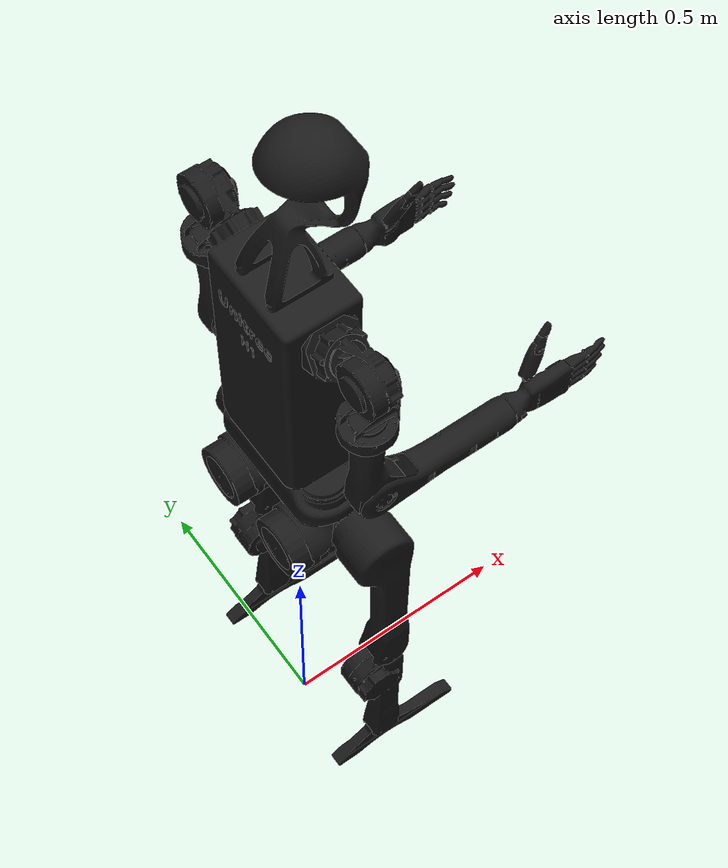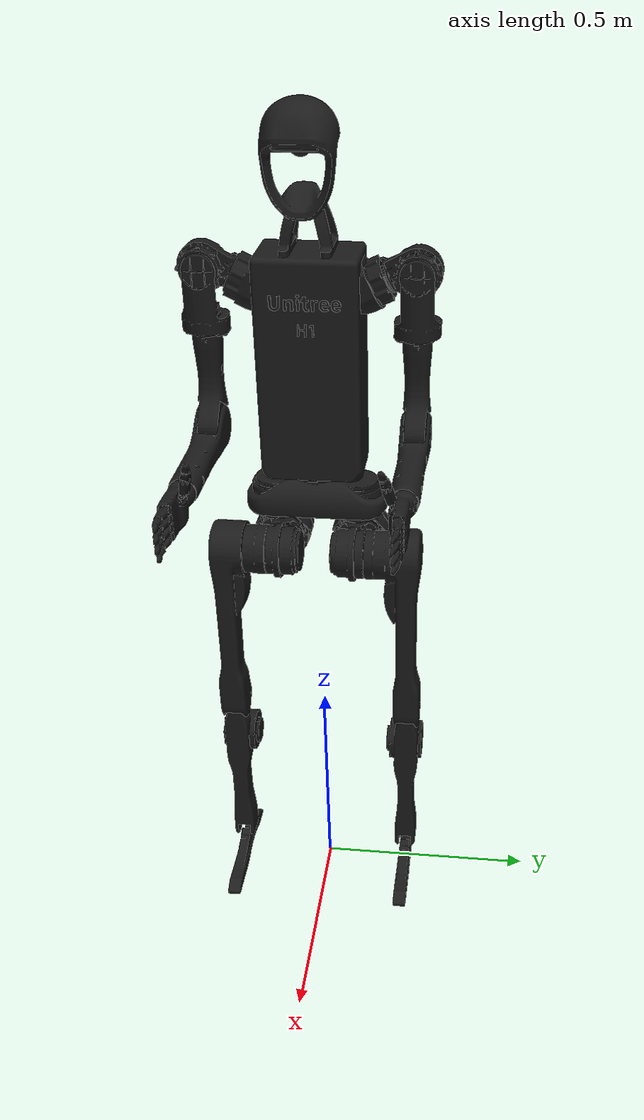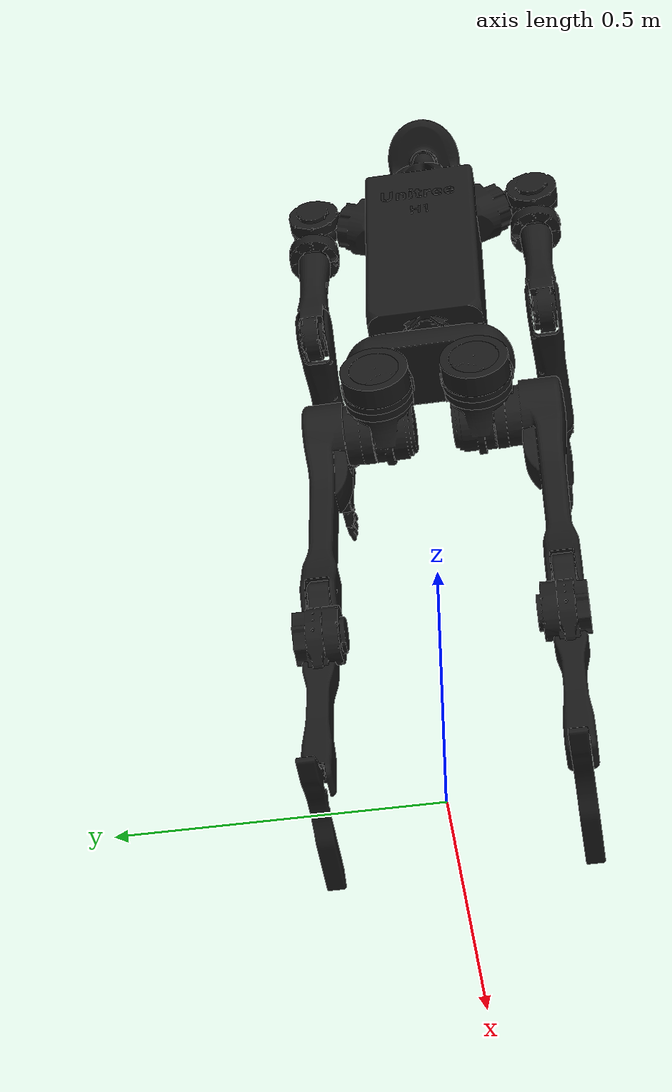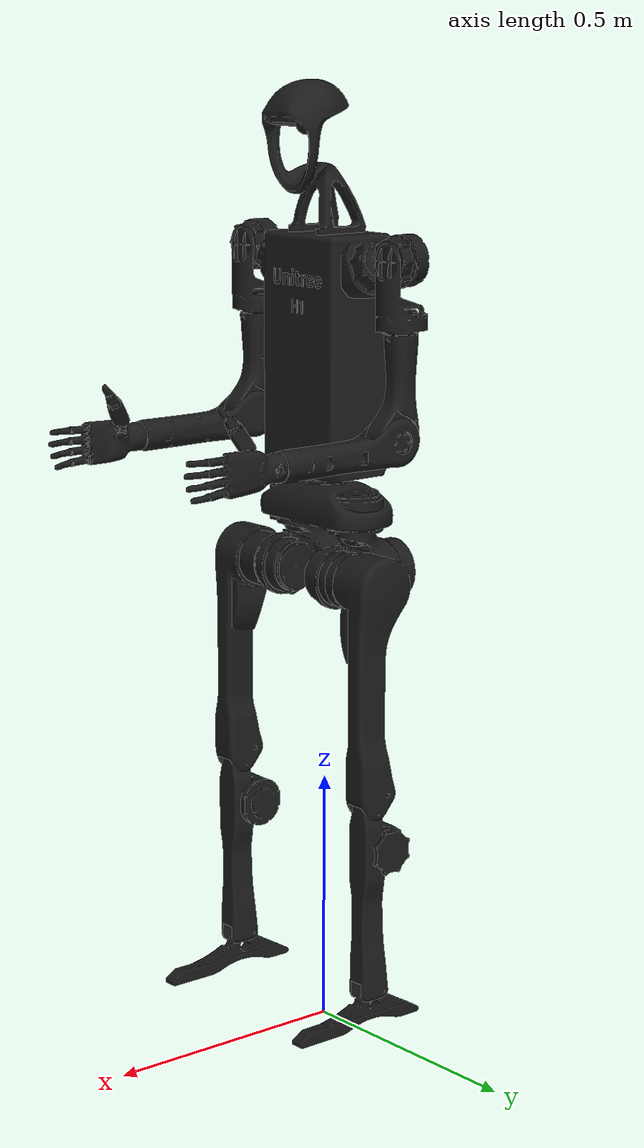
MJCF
<mujoco model="h1">
  <compiler angle="radian" meshdir="../meshes" autolimits="true"/>

  <default>
    <default class="h1">
      <geom type="mesh"/>
      <joint damping="1" armature="0.1"/>
      <default class="visual">
        <geom contype="0" conaffinity="0" group="2" material="black"/>
      </default>
      <default class="collision">
        <geom group="3" mass="0" density="0"/>
      </default>
      <site size="0.001" rgba="0.5 0.5 0.5 0.3" group="4"/>
    </default>
  </default>

  <asset>
    <material name="black" rgba="0.1 0.1 0.1 1"/>
    <material name="white" rgba="0.1 0.1 0.1 1"/>

    <mesh name="pelvis" file="pelvis.STL"/>
    <mesh name="left_hip_yaw_link" file="left_hip_yaw_link.STL"/>
    <mesh name="left_hip_roll_link" file="left_hip_roll_link.STL"/>
    <mesh name="left_hip_pitch_link" file="left_hip_pitch_link.STL"/>
    <mesh name="left_knee_link" file="left_knee_link.STL"/>
    <mesh name="left_ankle_link" file="left_ankle_link.STL"/>
    <mesh name="right_hip_yaw_link" file="right_hip_yaw_link.STL"/>
    <mesh name="right_hip_roll_link" file="right_hip_roll_link.STL"/>
    <mesh name="right_hip_pitch_link" file="right_hip_pitch_link.STL"/>
    <mesh name="right_knee_link" file="right_knee_link.STL"/>
    <mesh name="right_ankle_link" file="right_ankle_link.STL"/>
    <mesh name="torso_link" file="torso_link.STL"/>
    <mesh name="left_shoulder_pitch_link" file="left_shoulder_pitch_link.STL"/>
    <mesh name="left_shoulder_roll_link" file="left_shoulder_roll_link.STL"/>
    <mesh name="left_shoulder_yaw_link" file="left_shoulder_yaw_link.STL"/>
    <mesh name="left_elbow_link" file="left_elbow_link.STL"/>
    <mesh name="left_hand_link" file="left_hand_link.STL"/>
    <mesh name="L_hand_base_link" file="L_hand_base_link.STL"/>
    <mesh name="Link11_L" file="Link11_L.STL"/>
    <mesh name="Link12_L" file="Link12_L.STL"/>
    <mesh name="Link13_L" file="Link13_L.STL"/>
    <mesh name="Link14_L" file="Link14_L.STL"/>
    <mesh name="Link15_L" file="Link15_L.STL"/>
    <mesh name="Link16_L" file="Link16_L.STL"/>
    <mesh name="Link17_L" file="Link17_L.STL"/>
    <mesh name="Link18_L" file="Link18_L.STL"/>
    <mesh name="Link19_L" file="Link19_L.STL"/>
    <mesh name="Link20_L" file="Link20_L.STL"/>
    <mesh name="Link21_L" file="Link21_L.STL"/>
    <mesh name="Link22_L" file="Link22_L.STL"/>
    <mesh name="right_shoulder_pitch_link" file="right_shoulder_pitch_link.STL"/>
    <mesh name="right_shoulder_roll_link" file="right_shoulder_roll_link.STL"/>
    <mesh name="right_shoulder_yaw_link" file="right_shoulder_yaw_link.STL"/>
    <mesh name="right_elbow_link" file="right_elbow_link.STL"/>
    <mesh name="right_hand_link" file="right_hand_link.STL"/>
    <mesh name="R_hand_base_link" file="R_hand_base_link.STL"/>
    <mesh name="Link11_R" file="Link11_R.STL"/>
    <mesh name="Link12_R" file="Link12_R.STL"/>
    <mesh name="Link13_R" file="Link13_R.STL"/>
    <mesh name="Link14_R" file="Link14_R.STL"/>
    <mesh name="Link15_R" file="Link15_R.STL"/>
    <mesh name="Link16_R" file="Link16_R.STL"/>
    <mesh name="Link17_R" file="Link17_R.STL"/>
    <mesh name="Link18_R" file="Link18_R.STL"/>
    <mesh name="Link19_R" file="Link19_R.STL"/>
    <mesh name="Link20_R" file="Link20_R.STL"/>
    <mesh name="Link21_R" file="Link21_R.STL"/>
    <mesh name="Link22_R" file="Link22_R.STL"/>
    <mesh name="logo_link" file="logo_link.STL"/>
  </asset>
  <worldbody>
    <body name="pelvis" pos="0 0 1.1" childclass="h1">
      <inertial pos="-0.0002 4e-05 -0.04522" quat="0.498303 0.499454 -0.500496 0.501741" mass="5.39" diaginertia="0.0490211 0.0445821 0.00824619"/>
      <freejoint/>
      <geom class="visual" mesh="pelvis"/>
      <geom class="collision" mesh="pelvis"/>
      <body name="left_hip_yaw_link" pos="0 0.0875 -0.1742">
        <inertial pos="-0.04923 0.0001 0.0072" quat="0.69699 0.219193 0.233287 0.641667" mass="2.244" diaginertia="0.00304494 0.00296885 0.00189201"/>
        <joint name="left_hip_yaw_joint" pos="0 0 0" axis="0 0 1" range="-0.43 0.43"/>
        <geom class="visual" mesh="left_hip_yaw_link"/>
        <geom size="0.06 0.035" pos="-0.067 0 0" quat="0.707123 0 0.70709 0" type="cylinder"
          rgba="0.1 0.1 0.1 1" />
        <body name="left_hip_roll_link" pos="0.039468 0 0">
          <inertial pos="-0.0058 -0.00319 -9e-05" quat="0.0438242 0.70721 -0.0729075 0.701867" mass="2.232" diaginertia="0.00243264 0.00225325 0.00205492"/>
          <joint name="left_hip_roll_joint" pos="0 0 0" axis="1 0 0" range="-0.43 0.43"/>
          <geom class="visual" mesh="left_hip_roll_link"/>
          <geom class="collision" mesh="left_hip_roll_link"/>
          <body name="left_hip_pitch_link" pos="0 0.11536 0">
            <inertial pos="0.00746 -0.02346 -0.08193" quat="0.979828 0.0513522 -0.0169854 -0.192382" mass="4.152" diaginertia="0.0829503 0.0821457 0.00510909"/>
            <joint name="left_hip_pitch_joint" pos="0 0 0" axis="0 1 0" range="-3.14 2.53"/>
            <geom class="visual" mesh="left_hip_pitch_link"/>
            <geom class="collision" mesh="left_hip_pitch_link"/>
            <body name="left_knee_link" pos="0 0 -0.4">
              <inertial pos="-0.00136 -0.00512 -0.1384" quat="0.626132 -0.034227 -0.0416277 0.777852" mass="1.721" diaginertia="0.0125237 0.0123104 0.0019428"/>
              <joint name="left_knee_joint" pos="0 0 0" axis="0 1 0" range="-0.26 2.05"/>
              <geom class="visual" mesh="left_knee_link"/>
              <geom class="collision" mesh="left_knee_link"/>
              <body name="left_ankle_link" pos="0 0 -0.4">
                <inertial pos="0.042575 -1e-06 -0.044672" quat="0.486508 0.513141 0.513061 0.486585" mass="0.474" diaginertia="0.00290029 0.00281294 0.000152168"/>
                <joint name="left_ankle_joint" pos="0 0 0" axis="0 1 0" range="-0.87 0.52"/>
                <geom class="visual" mesh="left_ankle_link"/>
                <geom class="collision" mesh="left_ankle_link"/>
              </body>
            </body>
          </body>
        </body>
      </body>
      <body name="right_hip_yaw_link" pos="0 -0.0875 -0.1742">
        <inertial pos="-0.04923 -0.0001 0.0072" quat="0.641667 0.233287 0.219193 0.69699" mass="2.244" diaginertia="0.00304494 0.00296885 0.00189201"/>
        <joint name="right_hip_yaw_joint" pos="0 0 0" axis="0 0 1" range="-0.43 0.43"/>
        <geom class="visual" mesh="right_hip_yaw_link"/>
        <geom size="0.06 0.035" pos="-0.067 0 0" quat="0.707123 0 0.70709 0" type="cylinder"
          rgba="0.1 0.1 0.1 1" />
        <body name="right_hip_roll_link" pos="0.039468 0 0">
          <inertial pos="-0.0058 0.00319 -9e-05" quat="-0.0438242 0.70721 0.0729075 0.701867" mass="2.232" diaginertia="0.00243264 0.00225325 0.00205492"/>
          <joint name="right_hip_roll_joint" pos="0 0 0" axis="1 0 0" range="-0.43 0.43"/>
          <geom class="visual" mesh="right_hip_roll_link"/>
          <geom class="collision" mesh="right_hip_roll_link"/>
          <body name="right_hip_pitch_link" pos="0 -0.11536 0">
            <inertial pos="0.00746 0.02346 -0.08193" quat="0.979828 -0.0513522 -0.0169854 0.192382" mass="4.152" diaginertia="0.0829503 0.0821457 0.00510909"/>
            <joint name="right_hip_pitch_joint" pos="0 0 0" axis="0 1 0" range="-3.14 2.53"/>
            <geom class="visual" mesh="right_hip_pitch_link"/>
            <geom class="collision" mesh="right_hip_pitch_link"/>
            <body name="right_knee_link" pos="0 0 -0.4">
              <inertial pos="-0.00136 0.00512 -0.1384" quat="0.777852 -0.0416277 -0.034227 0.626132" mass="1.721" diaginertia="0.0125237 0.0123104 0.0019428"/>
              <joint name="right_knee_joint" pos="0 0 0" axis="0 1 0" range="-0.26 2.05"/>
              <geom class="visual" mesh="right_knee_link"/>
              <geom class="collision" mesh="right_knee_link"/>
              <body name="right_ankle_link" pos="0 0 -0.4">
                <inertial pos="0.042575 1e-06 -0.044672" quat="0.486585 0.513061 0.513141 0.486508" mass="0.474" diaginertia="0.00290029 0.00281294 0.000152168"/>
                <joint name="right_ankle_joint" pos="0 0 0" axis="0 1 0" range="-0.87 0.52"/>
                <geom class="visual" mesh="right_ankle_link"/>
                <geom class="collision" mesh="right_ankle_link"/>
              </body>
            </body>
          </body>
        </body>
      </body>
      <body name="torso_link">
        <inertial pos="0.000481917 0.00277509 0.207345" quat="0.99999 -0.00115864 -0.00279611 -0.00322135" mass="18.0417" diaginertia="0.495602 0.418446 0.128871"/>
        <joint name="torso_joint" pos="0 0 0" axis="0 0 1" range="-2.35 2.35"/>
        <geom class="visual" mesh="torso_link"/>
        <geom class="collision" mesh="torso_link"/>
        <geom class="visual" material="white" mesh="logo_link"/>
        <site name="imu" size="0.01" pos="-0.04452 -0.01891 0.27756"/>
        <body name="left_shoulder_pitch_link" pos="0.0055 0.15535 0.42999" quat="0.976296 0.216438 0 0">
          <inertial pos="0.005045 0.053657 -0.015715" quat="0.814858 0.579236 -0.0201072 -0.00936488" mass="1.033" diaginertia="0.00129936 0.000987113 0.000858198"/>
          <joint name="left_shoulder_pitch_joint" pos="0 0 0" axis="0 1 0" range="-2.87 2.87"/>
          <geom class="visual" mesh="left_shoulder_pitch_link"/>
          <geom class="collision" mesh="left_shoulder_pitch_link"/>
          <body name="left_shoulder_roll_link" pos="-0.0055 0.0565 -0.0165" quat="0.976296 -0.216438 0 0">
            <inertial pos="0.000679 0.00115 -0.094076" quat="0.732491 0.00917179 0.0766656 0.676384" mass="0.793" diaginertia="0.00170388 0.00158256 0.00100336"/>
            <joint name="left_shoulder_roll_joint" pos="0 0 0" axis="1 0 0" range="-0.34 3.11"/>
            <geom class="visual" mesh="left_shoulder_roll_link"/>
            <geom class="collision" mesh="left_shoulder_roll_link"/>
            <body name="left_shoulder_yaw_link" pos="0 0 -0.1343">
              <inertial pos="0.01365 0.002767 -0.16266" quat="0.703042 -0.0331229 -0.0473362 0.708798" mass="0.839" diaginertia="0.00408038 0.00370367 0.000622687"/>
              <joint name="left_shoulder_yaw_joint" pos="0 0 0" axis="0 0 1" range="-1.3 4.45"/>
              <geom class="visual" mesh="left_shoulder_yaw_link"/>
              <geom class="collision" mesh="left_shoulder_yaw_link"/>
              <body name="left_elbow_link" pos="0.0185 0 -0.198">
                <inertial pos="0.164862 0.000118 -0.015734" quat="0.0854962 0.719403 0.0942621 0.682836" mass="0.723" diaginertia="0.00646854 0.00645573 0.000479469"/>
                <joint name="left_elbow_joint" pos="0 0 0" axis="0 1 0" range="-1.25 2.61"/>
                <geom class="visual" mesh="left_elbow_link"/>
                <geom class="collision" mesh="left_elbow_link"/>
                <body name="left_hand_link" pos="0.2605 0 -0.0185">
                  <inertial pos="0.0631874 -0.00232969 -0.00176135" quat="0.509356 0.489591 0.510242 0.490418" mass="0.15543" diaginertia="0.000179349 0.000133079 8.74084e-05"/>
                  <joint name="left_hand_joint" pos="0 0 0" axis="1 0 0" range="-3.05433 3.05433" damping="0.5" frictionloss="0.1"/>
                  <geom type="mesh" contype="0" conaffinity="0" group="1" density="0" rgba="0.1 0.1 0.1 1" mesh="left_hand_link"/>
                  <geom type="mesh" rgba="0.1 0.1 0.1 1" mesh="left_hand_link"/>
                  <geom pos="0.003 0 0" quat="0.707107 0 0 0.707107" type="mesh" contype="0" conaffinity="0" group="1" density="0" rgba="0.1 0.1 0.1 1" mesh="L_hand_base_link"/>
                  <geom pos="0.003 0 0" quat="0.707107 0 0 0.707107" type="mesh" rgba="0.1 0.1 0.1 1" mesh="L_hand_base_link"/>
                  <body name="L_thumb_proximal_base" pos="0.0721 -0.01696 0.02045" quat="-2.59735e-06 0.707107 0 0.707107">
                    <inertial pos="0.0048817 0.00038782 -0.00722" quat="0.445981 0.352284 0.495833 0.656617" mass="0.0018869" diaginertia="8.66031e-08 6.87331e-08 4.94199e-08"/>
                    <joint name="L_thumb_proximal_yaw_joint" pos="0 0 0" axis="0 0 1" range="-0.1 1.3" damping="0.5" frictionloss="0.1"/>
                    <geom type="mesh" contype="0" conaffinity="0" group="1" density="0" rgba="0.1 0.1 0.1 1" mesh="Link11_L"/>
                    <geom type="mesh" rgba="0.1 0.1 0.1 1" mesh="Link11_L"/>
                    <body name="L_thumb_proximal" pos="0.0099867 0.0098242 -0.0089" quat="0.704571 -0.704573 -0.0598169 0.0598167">
                      <inertial pos="0.021936 -0.01279 -0.0080386" quat="0.25452 0.660687 -0.251949 0.659723" mass="0.0066101" diaginertia="2.78701e-06 2.44024e-06 8.6466e-07"/>
                      <joint name="L_thumb_proximal_pitch_joint" pos="0 0 0" axis="0 0 -1" range="-0.1 0.6" damping="0.5" frictionloss="0.1"/>
                      <geom type="mesh" contype="0" conaffinity="0" group="1" density="0" rgba="0.1 0.1 0.1 1" mesh="Link12_L"/>
                      <geom type="mesh" rgba="0.1 0.1 0.1 1" mesh="Link12_L"/>
                      <body name="L_thumb_intermediate" pos="0.04407 -0.034553 -0.0008">
                        <inertial pos="0.0095531 0.0016282 -0.0072002" quat="0.30738 0.636732 -0.307526 0.636803" mass="0.0037844" diaginertia="4.6532e-07 4.48114e-07 2.45646e-07"/>
                        <joint name="L_thumb_intermediate_joint" pos="0 0 0" axis="0 0 -1" range="0 0.8" damping="0.5" frictionloss="0.1"/>
                        <geom type="mesh" contype="0" conaffinity="0" group="1" density="0" rgba="0.1 0.1 0.1 1" mesh="Link13_L"/>
                        <geom type="mesh" rgba="0.1 0.1 0.1 1" mesh="Link13_L"/>
                        <body name="L_thumb_distal" pos="0.020248 -0.010156 -0.0012">
                          <inertial pos="0.0092888 -0.004953 -0.0060033" quat="0.266264 0.65596 -0.262836 0.655544" mass="0.003344" diaginertia="2.0026e-07 1.95246e-07 8.1594e-08"/>
                          <joint name="L_thumb_distal_joint" pos="0 0 0" axis="0 0 -1" range="0 1.2" damping="0.5" frictionloss="0.1"/>
                          <geom type="mesh" contype="0" conaffinity="0" group="1" density="0" rgba="0.1 0.1 0.1 1" mesh="Link14_L"/>
                          <geom type="mesh" rgba="0.1 0.1 0.1 1" mesh="Link14_L"/>
                        </body>
                      </body>
                    </body>
                  </body>
                  <body name="L_index_proximal" pos="0.13953 0.00028533 0.032268" quat="0.706999 -0.0123409 -0.0123409 0.706999">
                    <inertial pos="0.0012971 -0.011934 -0.0059998" quat="0.489677 0.510115 -0.489692 0.510099" mass="0.0042405" diaginertia="6.9402e-07 6.62904e-07 2.10916e-07"/>
                    <joint name="L_index_proximal_joint" pos="0 0 0" axis="0 0 -1" range="0 1.7" damping="0.5" frictionloss="0.1"/>
                    <geom type="mesh" contype="0" conaffinity="0" group="1" density="0" rgba="0.1 0.1 0.1 11" mesh="Link15_L"/>
                    <geom type="mesh" rgba="0.1 0.1 0.1 1" mesh="Link15_L"/>
                    <body name="L_index_intermediate" pos="-0.0024229 -0.032041 -0.001">
                      <inertial pos="0.0021753 -0.019567 -0.005" quat="0.528694 0.469555 -0.528694 0.469555" mass="0.0045682" diaginertia="7.8176e-07 7.72427e-07 8.47209e-08"/>
                      <joint name="L_index_intermediate_joint" pos="0 0 0" axis="0 0 -1" range="0 1.7" damping="0.5" frictionloss="0.1"/>
                      <geom type="mesh" contype="0" conaffinity="0" group="1" density="0" rgba="0.1 0.1 0.1 1" mesh="Link16_L"/>
                      <geom type="mesh" rgba="0.1 0.1 0.1 1" mesh="Link16_L"/>
                    </body>
                  </body>
                  <body name="L_middle_proximal" pos="0.1401 0.00028533 0.01295" quat="0.707107 0 0 0.707107">
                    <inertial pos="0.0012971 -0.011934 -0.0059999" quat="0.489677 0.510115 -0.489692 0.510099" mass="0.0042405" diaginertia="6.9402e-07 6.62904e-07 2.10916e-07"/>
                    <joint name="L_middle_proximal_joint" pos="0 0 0" axis="0 0 -1" range="0 1.7" damping="0.5" frictionloss="0.1"/>
                    <geom type="mesh" contype="0" conaffinity="0" group="1" density="0" rgba="0.1 0.1 0.1 1" mesh="Link17_L"/>
                    <geom type="mesh" rgba="0.1 0.1 0.1 1" mesh="Link17_L"/>
                    <body name="L_middle_intermediate" pos="-0.0024229 -0.032041 -0.001">
                      <inertial pos="0.001921 -0.020796 -0.0049999" quat="0.531603 0.466115 -0.531728 0.466262" mass="0.0050397" diaginertia="9.8385e-07 9.73288e-07 9.14016e-08"/>
                      <joint name="L_middle_intermediate_joint" pos="0 0 0" axis="0 0 -1" range="0 1.7" damping="0.5" frictionloss="0.1"/>
                      <geom type="mesh" contype="0" conaffinity="0" group="1" density="0" rgba="0.1 0.1 0.1 1" mesh="Link18_L"/>
                      <geom type="mesh" rgba="0.1 0.1 0.1 1" mesh="Link18_L"/>
                    </body>
                  </body>
                  <body name="L_ring_proximal" pos="0.13991 0.00028533 -0.0062872" quat="0.706864 0.0185099 0.0185099 0.706864">
                    <inertial pos="0.0012971 -0.011934 -0.0059999" quat="0.489677 0.510114 -0.489692 0.510099" mass="0.0042405" diaginertia="6.9402e-07 6.62904e-07 2.10916e-07"/>
                    <joint name="L_ring_proximal_joint" pos="0 0 0" axis="0 0 -1" range="0 1.7" damping="0.5" frictionloss="0.1"/>
                    <geom type="mesh" contype="0" conaffinity="0" group="1" density="0" rgba="0.1 0.1 0.1 1" mesh="Link19_L"/>
                    <geom type="mesh" rgba="0.1 0.1 0.1 1" mesh="Link19_L"/>
                    <body name="L_ring_intermediate" pos="-0.0024229 -0.032041 -0.001">
                      <inertial pos="0.0021753 -0.019567 -0.005" quat="0.528694 0.469556 -0.528694 0.469556" mass="0.0045682" diaginertia="7.8176e-07 7.72437e-07 8.47208e-08"/>
                      <joint name="L_ring_intermediate_joint" pos="0 0 0" axis="0 0 -1" range="0 1.7" damping="0.5" frictionloss="0.1"/>
                      <geom type="mesh" contype="0" conaffinity="0" group="1" density="0" rgba="0.1 0.1 0.1 1" mesh="Link20_L"/>
                      <geom type="mesh" rgba="0.1 0.1 0.1 1" mesh="Link20_L"/>
                    </body>
                  </body>
                  <body name="L_pinky_proximal" pos="0.13871 0.00028533 -0.025488" quat="0.706138 0.0370072 0.0370072 0.706138">
                    <inertial pos="0.0012971 -0.011934 -0.0059999" quat="0.489677 0.510114 -0.489692 0.510099" mass="0.0042405" diaginertia="6.9402e-07 6.62904e-07 2.10916e-07"/>
                    <joint name="L_pinky_proximal_joint" pos="0 0 0" axis="0 0 -1" range="0 1.7" damping="0.5" frictionloss="0.1"/>
                    <geom type="mesh" contype="0" conaffinity="0" group="1" density="0" rgba="0.1 0.1 0.1 1" mesh="Link21_L"/>
                    <geom type="mesh" rgba="0.1 0.1 0.1 1" mesh="Link21_L"/>
                    <body name="L_pinky_intermediate" pos="-0.0024229 -0.032041 -0.001">
                      <inertial pos="0.0024788 -0.016208 -0.0050001" quat="0.526797 0.471683 -0.526793 0.471687" mass="0.0036036" diaginertia="4.4881e-07 4.43809e-07 6.5736e-08"/>
                      <joint name="L_pinky_intermediate_joint" pos="0 0 0" axis="0 0 -1" range="0 1.7" damping="0.5" frictionloss="0.1"/>
                      <geom type="mesh" contype="0" conaffinity="0" group="1" density="0" rgba="0.1 0.1 0.1 1" mesh="Link22_L"/>
                      <geom type="mesh" rgba="0.1 0.1 0.1 1" mesh="Link22_L"/>
                    </body>
                  </body>
                </body>
              </body>
            </body>
          </body>
        </body>
        <body name="right_shoulder_pitch_link" pos="0.0055 -0.15535 0.42999" quat="0.976296 -0.216438 0 0">
          <inertial pos="0.005045 -0.053657 -0.015715" quat="0.579236 0.814858 0.00936488 0.0201072" mass="1.033" diaginertia="0.00129936 0.000987113 0.000858198"/>
          <joint name="right_shoulder_pitch_joint" pos="0 0 0" axis="0 1 0" range="-2.87 2.87"/>
          <geom class="visual" mesh="right_shoulder_pitch_link"/>
          <geom class="collision" mesh="right_shoulder_pitch_link"/>
          <body name="right_shoulder_roll_link" pos="-0.0055 -0.0565 -0.0165" quat="0.976296 0.216438 0 0">
            <inertial pos="0.000679 -0.00115 -0.094076" quat="0.676384 0.0766656 0.00917179 0.732491" mass="0.793" diaginertia="0.00170388 0.00158256 0.00100336"/>
            <joint name="right_shoulder_roll_joint" pos="0 0 0" axis="1 0 0" range="-3.11 0.34"/>
            <geom class="visual" mesh="right_shoulder_roll_link"/>
            <geom class="collision" mesh="right_shoulder_roll_link"/>
            <body name="right_shoulder_yaw_link" pos="0 0 -0.1343">
              <inertial pos="0.01365 -0.002767 -0.16266" quat="0.708798 -0.0473362 -0.0331229 0.703042" mass="0.839" diaginertia="0.00408038 0.00370367 0.000622687"/>
              <joint name="right_shoulder_yaw_joint" pos="0 0 0" axis="0 0 1" range="-4.45 1.3"/>
              <geom class="visual" mesh="right_shoulder_yaw_link"/>
              <geom class="collision" mesh="right_shoulder_yaw_link"/>
              <body name="right_elbow_link" pos="0.0185 0 -0.198">
                <inertial pos="0.164862 -0.000118 -0.015734" quat="-0.0854962 0.719403 -0.0942621 0.682836" mass="0.723" diaginertia="0.00646854 0.00645573 0.000479469"/>
                <joint name="right_elbow_joint" pos="0 0 0" axis="0 1 0" range="-1.25 2.61"/>
                <geom class="visual" mesh="right_elbow_link"/>
                <geom class="collision" mesh="right_elbow_link"/>
                <body name="right_hand_link" pos="0.2605 0 -0.0185">
                  <inertial pos="0.0631874 0.00230731 -0.00178328" quat="0.490597 0.510024 0.489386 0.509599" mass="0.15543" diaginertia="0.00017876 0.000132509 8.7405e-05"/>
                  <joint name="right_hand_joint" pos="0 0 0" axis="1 0 0" range="-3.05433 3.05433" damping="0.5" frictionloss="0.1"/>
                  <geom type="mesh" contype="0" conaffinity="0" group="1" density="0" rgba="0.1 0.1 0.1 1" mesh="right_hand_link"/>
                  <geom type="mesh" rgba="0.1 0.1 0.1 1" mesh="right_hand_link"/>
                  <geom pos="0.003 0 0" quat="0 0.707107 -0.707107 0" type="mesh" contype="0" conaffinity="0" group="1" density="0" rgba="0.1 0.1 0.1 1" mesh="R_hand_base_link"/>
                  <geom pos="0.003 0 0" quat="0 0.707107 -0.707107 0" type="mesh" rgba="0.1 0.1 0.1 1" mesh="R_hand_base_link"/>
                  <body name="R_thumb_proximal_base" pos="0.0721 0.01696 0.02045" quat="-0.707107 -2.59735e-06 -0.707107 0">
                    <inertial pos="-0.0048064 0.0009382 -0.00757" quat="0.515015 0.680854 0.408023 0.323596" mass="0.0018869" diaginertia="8.66026e-08 6.8732e-08 4.94194e-08"/>
                    <joint name="R_thumb_proximal_yaw_joint" pos="0 0 0" axis="0 0 -1" range="-0.1 1.3" damping="0.5" frictionloss="0.1"/>
                    <geom type="mesh" contype="0" conaffinity="0" group="1" density="0" rgba="0.1 0.1 0.1 1" mesh="Link11_R"/>
                    <geom type="mesh" rgba="0.1 0.1 0.1 1" mesh="Link11_R"/>
                    <body name="R_thumb_proximal" pos="-0.0088099 0.010892 -0.00925" quat="0.0996843 0.0996847 0.700046 0.700044">
                      <inertial pos="0.021932 0.012785 -0.0080386" quat="-0.254474 0.660716 0.251893 0.659733" mass="0.0066075" diaginertia="2.78601e-06 2.43933e-06 8.64566e-07"/>
                      <joint name="R_thumb_proximal_pitch_joint" pos="0 0 0" axis="0 0 1" range="-0.1 0.6" damping="0.5" frictionloss="0.1"/>
                      <geom type="mesh" contype="0" conaffinity="0" group="1" density="0" rgba="0.1 0.1 0.1 1" mesh="Link12_R"/>
                      <geom type="mesh" rgba="0.1 0.1 0.1 1" mesh="Link12_R"/>
                      <body name="R_thumb_intermediate" pos="0.04407 0.034553 -0.0008">
                        <inertial pos="0.0095544 -0.0016282 -0.0071997" quat="0.636718 0.307389 -0.636802 0.307548" mass="0.0037847" diaginertia="4.6531e-07 4.48089e-07 2.45661e-07"/>
                        <joint name="R_thumb_intermediate_joint" pos="0 0 0" axis="0 0 1" range="0 0.8" damping="0.5" frictionloss="0.1"/>
                        <geom type="mesh" contype="0" conaffinity="0" group="1" density="0" rgba="0.1 0.1 0.1 1" mesh="Link13_R"/>
                        <geom type="mesh" rgba="0.1 0.1 0.1 1" mesh="Link13_R"/>
                        <body name="R_thumb_distal" pos="0.020248 0.010156 -0.0012">
                          <inertial pos="0.0092888 0.0049529 -0.0060033" quat="-0.266294 0.655967 0.262806 0.655537" mass="0.0033441" diaginertia="2.0026e-07 1.95247e-07 8.1593e-08"/>
                          <joint name="R_thumb_distal_joint" pos="0 0 0" axis="0 0 1" range="0 1.2" damping="0.5" frictionloss="0.1"/>
                          <geom type="mesh" contype="0" conaffinity="0" group="1" density="0" rgba="0.1 0.1 0.1 1" mesh="Link14_R"/>
                          <geom type="mesh" rgba="0.1 0.1 0.1 1" mesh="Link14_R"/>
                        </body>
                      </body>
                    </body>
                  </body>
                  <body name="R_index_proximal" pos="0.13953 -0.00028533 0.032268" quat="0.706999 0.0123358 -0.0123358 -0.706999">
                    <inertial pos="0.0012259 0.011942 -0.0060001" quat="0.50867 0.49121 -0.508643 0.491172" mass="0.0042403" diaginertia="6.9398e-07 6.62871e-07 2.10909e-07"/>
                    <joint name="R_index_proximal_joint" pos="0 0 0" axis="0 0 1" range="0 1.7" damping="0.5" frictionloss="0.1"/>
                    <geom type="mesh" contype="0" conaffinity="0" group="1" density="0" rgba="0.1 0.1 0.1 1" mesh="Link15_R"/>
                    <geom type="mesh" rgba="0.1 0.1 0.1 1" mesh="Link15_R"/>
                    <body name="R_index_intermediate" pos="-0.0026138 0.032026 -0.001">
                      <inertial pos="0.0019697 0.019589 -0.005" quat="0.466773 0.531152 -0.466773 0.531153" mass="0.0045683" diaginertia="7.8179e-07 7.72465e-07 8.47212e-08"/>
                      <joint name="R_index_intermediate_joint" pos="0 0 0" axis="0 0 1" range="0 1.7" damping="0.5" frictionloss="0.1"/>
                      <geom type="mesh" contype="0" conaffinity="0" group="1" density="0" rgba="0.1 0.1 0.1 1" mesh="Link16_R"/>
                      <geom type="mesh" rgba="0.1 0.1 0.1 1" mesh="Link16_R"/>
                    </body>
                  </body>
                  <body name="R_middle_proximal" pos="0.1401 -0.00028533 0.01295" quat="0.707107 -2.59735e-06 2.59735e-06 -0.707107">
                    <inertial pos="0.001297 0.011934 -0.0060001" quat="0.510131 0.489693 -0.510105 0.489653" mass="0.0042403" diaginertia="6.9397e-07 6.62865e-07 2.10915e-07"/>
                    <joint name="R_middle_proximal_joint" pos="0 0 0" axis="0 0 1" range="0 1.7" damping="0.5" frictionloss="0.1"/>
                    <geom type="mesh" contype="0" conaffinity="0" group="1" density="0" rgba="0.1 0.1 0.1 1" mesh="Link17_R"/>
                    <geom type="mesh" rgba="0.1 0.1 0.1 1" mesh="Link17_R"/>
                    <body name="R_middle_intermediate" pos="-0.0024229 0.032041 -0.001">
                      <inertial pos="0.001921 0.020796 -0.005" quat="0.466148 0.531627 -0.466229 0.531705" mass="0.0050396" diaginertia="9.8384e-07 9.73279e-07 9.14014e-08"/>
                      <joint name="R_middle_intermediate_joint" pos="0 0 0" axis="0 0 1" range="0 1.7" damping="0.5" frictionloss="0.1"/>
                      <geom type="mesh" contype="0" conaffinity="0" group="1" density="0" rgba="0.1 0.1 0.1 1" mesh="Link18_R"/>
                      <geom type="mesh" rgba="0.1 0.1 0.1 1" mesh="Link18_R"/>
                    </body>
                  </body>
                  <body name="R_ring_proximal" pos="0.13991 -0.00028533 -0.0062872" quat="-0.706864 0.0185215 -0.0185215 0.706864">
                    <inertial pos="0.001297 0.011934 -0.0060002" quat="0.510129 0.489691 -0.510107 0.489654" mass="0.0042403" diaginertia="6.9397e-07 6.62865e-07 2.10915e-07"/>
                    <joint name="R_ring_proximal_joint" pos="0 0 0" axis="0 0 1" range="0 1.7" damping="0.5" frictionloss="0.1"/>
                    <geom type="mesh" contype="0" conaffinity="0" group="1" density="0" rgba="0.1 0.1 0.1 1" mesh="Link19_R"/>
                    <geom type="mesh" rgba="0.1 0.1 0.1 1" mesh="Link19_R"/>
                    <body name="R_ring_intermediate" pos="-0.0024229 0.032041 -0.001">
                      <inertial pos="0.0021753 0.019567 -0.005" quat="0.469554 0.528695 -0.469554 0.528695" mass="0.0045683" diaginertia="7.8177e-07 7.72448e-07 8.4722e-08"/>
                      <joint name="R_ring_intermediate_joint" pos="0 0 0" axis="0 0 1" range="0 1.7" damping="0.5" frictionloss="0.1"/>
                      <geom type="mesh" contype="0" conaffinity="0" group="1" density="0" rgba="0.1 0.1 0.1 1" mesh="Link20_R"/>
                      <geom type="mesh" rgba="0.1 0.1 0.1 1" mesh="Link20_R"/>
                    </body>
                  </body>
                  <body name="R_pinky_proximal" pos="0.13871 -0.00028533 -0.025488" quat="-0.706138 0.0369975 -0.0369975 0.706138">
                    <inertial pos="0.001297 0.011934 -0.0060001" quat="0.51013 0.489693 -0.510106 0.489653" mass="0.0042403" diaginertia="6.9397e-07 6.62865e-07 2.10915e-07"/>
                    <joint name="R_pinky_proximal_joint" pos="0 0 0" axis="0 0 1" range="0 1.7" damping="0.5" frictionloss="0.1"/>
                    <geom type="mesh" contype="0" conaffinity="0" group="1" density="0" rgba="0.1 0.1 0.1 1" mesh="Link21_R"/>
                    <geom type="mesh" rgba="0.1 0.1 0.1 1" mesh="Link21_R"/>
                    <body name="R_pinky_intermediate" pos="-0.0024229 0.032041 -0.001">
                      <inertial pos="0.0024748 0.016203 -0.0050031" quat="0.47398 0.528862 -0.469291 0.524799" mass="0.0035996" diaginertia="4.4867e-07 4.43723e-07 6.56538e-08"/>
                      <joint name="R_pinky_intermediate_joint" pos="0 0 0" axis="0 0 1" range="0 1.7" damping="0.5" frictionloss="0.1"/>
                      <geom type="mesh" contype="0" conaffinity="0" group="1" density="0" rgba="0.1 0.1 0.1 1" mesh="Link22_R"/>
                      <geom type="mesh" rgba="0.1 0.1 0.1 1" mesh="Link22_R"/>
                    </body>
                  </body>
                </body>
              </body>
            </body>
          </body>
        </body>
      </body>
    </body>
  </worldbody>

  <actuator>
    <motor class="h1" name="right_hip_roll_joint" joint="right_hip_roll_joint" ctrllimited="true" ctrlrange="-200 200"/>
    <motor class="h1" name="right_hip_pitch_joint" joint="right_hip_pitch_joint" ctrllimited="true" ctrlrange="-200 200"/>
    <motor class="h1" name="right_knee_joint" joint="right_knee_joint" ctrllimited="true" ctrlrange="-300 300"/>
    <motor class="h1" name="left_hip_roll_joint" joint="left_hip_roll_joint" ctrllimited="true" ctrlrange="-200 200"/>
    <motor class="h1" name="left_hip_pitch_joint" joint="left_hip_pitch_joint" ctrllimited="true" ctrlrange="-200 200"/>
    <motor class="h1" name="left_knee_joint" joint="left_knee_joint" ctrllimited="true" ctrlrange="-300 300"/>
    <motor class="h1" name="torso_joint" joint="torso_joint" ctrllimited="true" ctrlrange="-200 200"/>
    <motor class="h1" name="left_hip_yaw_joint" joint="left_hip_yaw_joint" ctrllimited="true" ctrlrange="-200 200"/>
    <motor class="h1" name="right_hip_yaw_joint" joint="right_hip_yaw_joint" ctrllimited="true" ctrlrange="-200 200"/>

    <motor class="h1" name="left_ankle_joint" joint="left_ankle_joint" ctrllimited="true" ctrlrange="-40 40"/>
    <motor class="h1" name="right_ankle_joint" joint="right_ankle_joint" ctrllimited="true" ctrlrange="-40 40"/>
    <motor class="h1" name="right_shoulder_pitch_joint" joint="right_shoulder_pitch_joint" ctrllimited="true" ctrlrange="-40 40"/>
    <motor class="h1" name="right_shoulder_roll_joint" joint="right_shoulder_roll_joint" ctrllimited="true" ctrlrange="-40 40"/>
    <motor class="h1" name="right_shoulder_yaw_joint" joint="right_shoulder_yaw_joint" ctrllimited="true" ctrlrange="-18 18"/>
    <motor class="h1" name="right_elbow_joint" joint="right_elbow_joint" ctrllimited="true" ctrlrange="-18 18"/>
    <motor class="h1" name="left_shoulder_pitch_joint" joint="left_shoulder_pitch_joint" ctrllimited="true" ctrlrange="-40 40"/>
    <motor class="h1" name="left_shoulder_roll_joint" joint="left_shoulder_roll_joint" ctrllimited="true" ctrlrange="-40 40"/>
    <motor class="h1" name="left_shoulder_yaw_joint" joint="left_shoulder_yaw_joint" ctrllimited="true" ctrlrange="-18 18"/>
    <motor class="h1" name="left_elbow_joint" joint="left_elbow_joint" ctrllimited="true" ctrlrange="-18 18"/>

    <motor class="h1" name="L_index_proximal_joint" joint="L_index_proximal_joint" ctrlrange="-1 1"/>
    <motor class="h1" name="L_index_intermediate_joint" joint="L_index_intermediate_joint" ctrlrange="-1 1"/>
    <motor class="h1" name="L_middle_proximal_joint" joint="L_middle_proximal_joint" ctrlrange="-1 1"/>
    <motor class="h1" name="L_middle_intermediate_joint" joint="L_middle_intermediate_joint" ctrlrange="-1 1"/>
    <motor class="h1" name="L_ring_proximal_joint" joint="L_ring_proximal_joint" ctrlrange="-1 1"/>
    <motor class="h1" name="L_ring_intermediate_joint" joint="L_ring_intermediate_joint" ctrlrange="-1 1"/>
    <motor class="h1" name="L_pinky_proximal_joint" joint="L_pinky_proximal_joint" ctrlrange="-1 1"/>
    <motor class="h1" name="L_pinky_intermediate_joint" joint="L_pinky_intermediate_joint" ctrlrange="-1 1"/>
    <motor class="h1" name="L_thumb_proximal_yaw_joint" joint="L_thumb_proximal_yaw_joint" ctrlrange="-1 1"/>
    <motor class="h1" name="L_thumb_proximal_pitch_joint" joint="L_thumb_proximal_pitch_joint" ctrlrange="-1 1"/>
    <motor class="h1" name="L_thumb_intermediate_joint" joint="L_thumb_intermediate_joint" ctrlrange="-1 1"/>
    <motor class="h1" name="L_thumb_distal_joint" joint="L_thumb_distal_joint" ctrlrange="-1 1"/>

    <motor class="h1" name="R_index_proximal_joint" joint="R_index_proximal_joint" ctrlrange="-1 1"/>
    <motor class="h1" name="R_index_intermediate_joint" joint="R_index_intermediate_joint" ctrlrange="-1 1"/>
    <motor class="h1" name="R_middle_proximal_joint" joint="R_middle_proximal_joint" ctrlrange="-1 1"/>
    <motor class="h1" name="R_middle_intermediate_joint" joint="R_middle_intermediate_joint" ctrlrange="-1 1"/>
    <motor class="h1" name="R_ring_proximal_joint" joint="R_ring_proximal_joint" ctrlrange="-1 1"/>
    <motor class="h1" name="R_ring_intermediate_joint" joint="R_ring_intermediate_joint" ctrlrange="-1 1"/>
    <motor class="h1" name="R_pinky_proximal_joint" joint="R_pinky_proximal_joint" ctrlrange="-1 1"/>
    <motor class="h1" name="R_pinky_intermediate_joint" joint="R_pinky_intermediate_joint" ctrlrange="-1 1"/>
    <motor class="h1" name="R_thumb_proximal_yaw_joint" joint="R_thumb_proximal_yaw_joint" ctrlrange="-1 1"/>
    <motor class="h1" name="R_thumb_proximal_pitch_joint" joint="R_thumb_proximal_pitch_joint" ctrlrange="-1 1"/>
    <motor class="h1" name="R_thumb_intermediate_joint" joint="R_thumb_intermediate_joint" ctrlrange="-1 1"/>
    <motor class="h1" name="R_thumb_distal_joint" joint="R_thumb_distal_joint" ctrlrange="-1 1"/>

    <motor class="h1" name="left_hand_joint" joint="left_hand_joint" ctrlrange="-6 6"/>
    <motor class="h1" name="right_hand_joint" joint="right_hand_joint" ctrlrange="-6 6"/>
  </actuator>

  <sensor>
    <gyro name="imu-angular-velocity" site="imu" noise="5e-4" cutoff="34.9"/>
    <accelerometer name="imu-linear-acceleration" site="imu" noise="1e-2" cutoff="157"/>
  </sensor>

</mujoco>
